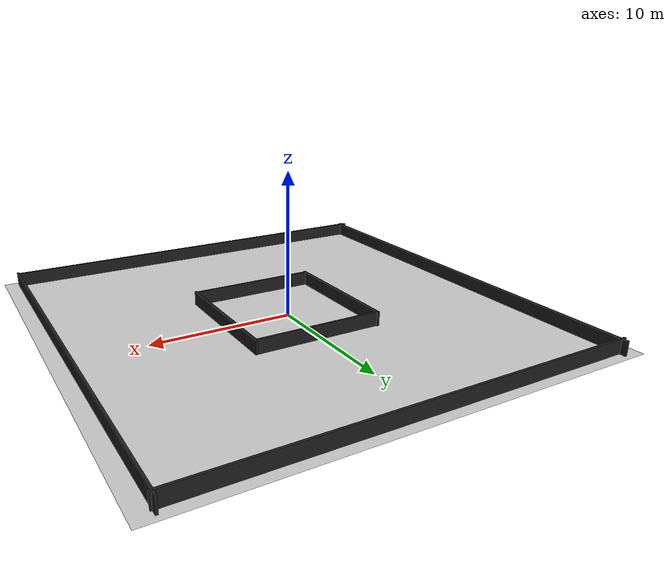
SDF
<sdf version="1.7">
 <world name="default">
  <light name="sun" type="directional">
   <pose>0 0 10 0 -0 0</pose>
   <diffuse>0.8 0.8 0.8 1</diffuse>
   <specular>0.2 0.2 0.2 1</specular>
   <attenuation>
    <range>1000</range>
    <constant>0.9</constant>
    <linear>0.01</linear>
    <quadratic>0.001</quadratic>
   </attenuation>
   <direction>-0.5 0.1 -0.9</direction>
   <spot><inner_angle>0</inner_angle><outer_angle>0</outer_angle><falloff>0</falloff></spot>
  </light>
  <gravity>0 0 -9.8</gravity>
  <magnetic_field>6e-06 2.3e-05 -4.2e-05</magnetic_field>
  <atmosphere type="adiabatic"/>
  <physics type="ode">
   <max_step_size>0.001</max_step_size>
   <real_time_factor>1</real_time_factor>
   <real_time_update_rate>1000</real_time_update_rate>
  </physics>
  <scene><ambient>0.4 0.4 0.4 1</ambient><background>0.7 0.7 0.7 1</background><shadows>1</shadows></scene>
  <audio><device>default</device></audio>
  <spherical_coordinates>
   <surface_model>EARTH_WGS84</surface_model>
   <latitude_deg>0</latitude_deg>
   <longitude_deg>0</longitude_deg>
   <elevation>0</elevation>
   <heading_deg>0</heading_deg>
  </spherical_coordinates>
  <model name="my_ground_plane">
   <static>1</static>
   <link name="link">
    <collision name="collision">
     <geometry><plane><normal>0 0 1</normal><size>32 32</size></plane></geometry>
     <surface><friction><ode><mu>100</mu><mu2>50</mu2></ode></friction></surface>
    </collision>
    <visual name="visual">
     <cast_shadows>0</cast_shadows>
     <geometry><plane><normal>0 0 1</normal><size>32 32</size></plane></geometry>
     <material>
      <script>
       <uri>model://wro_ground/materials/scripts</uri>
       <uri>model://wro_ground/materials/textures/</uri>
       <name>WroGround/Image</name>
      </script>
     </material>
    </visual>
   </link>
   <pose>0.085214 -0.149172 0 0 -0 0</pose>
  </model>
  <model name="wall1">
   <pose>0.089831 7.58521 0 0 -0 0</pose>
   <link name="Wall_18">
    <collision name="Wall_18_Collision">
     <geometry><box><size>30 0.15 1</size></box></geometry>
     <pose>0 0 0.5 0 -0 0</pose>
    </collision>
    <visual name="Wall_18_Visual">
     <pose>0 0 0.5 0 -0 0</pose>
     <geometry><box><size>30 0.15 1</size></box></geometry>
     <material>
      <script><uri>file://media/materials/scripts/gazebo.material</uri><name>Gazebo/Black</name></script>
      <ambient>0.3 0.3 0.3 0.3</ambient>
     </material>
     <meta><layer>0</layer></meta>
    </visual>
    <pose>-0 7.51019 0 0 -0 0</pose>
   </link>
   <static>1</static>
  </model>
  <model name="wall2">
   <model name="wall1">
    <pose>0 -4.6e-05 0 0 -0 0</pose>
    <link name="Wall_18">
     <collision name="Wall_18_Collision">
      <geometry><box><size>30 0.15 1</size></box></geometry>
      <pose>0 0 0.5 0 -0 0</pose>
     </collision>
     <visual name="Wall_18_Visual">
      <pose>0 0 0.5 0 -0 0</pose>
      <geometry><box><size>30 0.15 1</size></box></geometry>
      <material>
       <script><uri>file://media/materials/scripts/gazebo.material</uri><name>Gazebo/Black</name></script>
       <ambient>0.3 0.3 0.3 0.3</ambient>
      </material>
      <meta><layer>0</layer></meta>
     </visual>
     <pose>-0 7.51019 0 0 -0 0</pose>
    </link>
    <static>1</static>
   </model>
   <static>0</static>
   <pose>0.035119 -22.7218 0 0 -0 0</pose>
  </model>
  <model name="other_walls">
   <model name="wall1">
    <pose>-14.773 0.011278 0 0 -0 1.57355</pose>
    <link name="Wall_18">
     <collision name="Wall_18_Collision">
      <geometry><box><size>31 0.15 1</size></box></geometry>
      <pose>0 0 0.5 0 -0 0</pose>
     </collision>
     <visual name="Wall_18_Visual">
      <pose>0 0 0.5 0 -0 0</pose>
      <geometry><box><size>31 0.15 1</size></box></geometry>
      <material>
       <script><uri>file://media/materials/scripts/gazebo.material</uri><name>Gazebo/Black</name></script>
       <ambient>0.3 0.3 0.3 0.3</ambient>
      </material>
      <meta><layer>0</layer></meta>
     </visual>
     <pose>-0 7.51019 0 0 -0 0</pose>
    </link>
    <static>1</static>
   </model>
   <model name="wall1_0">
    <pose>14.7731 -0.011278 0 0 -0 1.57587</pose>
    <link name="Wall_18">
     <collision name="Wall_18_Collision">
      <geometry><box><size>31 0.15 1</size></box></geometry>
      <pose>0 0 0.5 0 -0 0</pose>
     </collision>
     <visual name="Wall_18_Visual">
      <pose>0 0 0.5 0 -0 0</pose>
      <geometry><box><size>31 0.15 1</size></box></geometry>
      <material>
       <script><uri>file://media/materials/scripts/gazebo.material</uri><name>Gazebo/Black</name></script>
       <ambient>0.3 0.3 0.3 0.3</ambient>
      </material>
      <meta><layer>0</layer></meta>
     </visual>
     <pose>-0 7.51019 0 0 -0 0</pose>
    </link>
    <static>1</static>
   </model>
   <static>0</static>
   <pose>7.74046 0.07021 0 0 -0 0</pose>
  </model>
  <model name="wall1_1">
   <pose>0.171655 -3.13598 0 0 -0 0</pose>
   <link name="Wall_18">
    <collision name="Wall_18_Collision">
     <geometry><box><size>9 0.15 1</size></box></geometry>
     <pose>0 0 0.5 0 -0 0</pose>
    </collision>
    <visual name="Wall_18_Visual">
     <pose>0 0 0.5 0 -0 0</pose>
     <geometry><box><size>9 0.15 1</size></box></geometry>
     <material>
      <script><uri>file://media/materials/scripts/gazebo.material</uri><name>Gazebo/Black</name></script>
      <ambient>0.3 0.3 0.3 0.3</ambient>
     </material>
     <meta><layer>0</layer></meta>
    </visual>
    <pose>-0 7.51019 0 0 -0 0</pose>
   </link>
   <static>1</static>
  </model>
  <model name="wall1_1_clone">
   <pose>0.169493 -12.3294 0 0 -0 0</pose>
   <link name="Wall_18">
    <collision name="Wall_18_Collision">
     <geometry><box><size>9 0.15 1</size></box></geometry>
     <pose>0 0 0.5 0 -0 0</pose>
    </collision>
    <visual name="Wall_18_Visual">
     <pose>0 0 0.5 0 -0 0</pose>
     <geometry><box><size>9 0.15 1</size></box></geometry>
     <material>
      <script><uri>file://media/materials/scripts/gazebo.material</uri><name>Gazebo/Black</name></script>
      <ambient>0.3 0.3 0.3 0.3</ambient>
     </material>
     <meta><layer>0</layer></meta>
    </visual>
    <pose>-0 7.51019 0 0 -0 0</pose>
   </link>
   <static>1</static>
  </model>
  <model name="wall1_1_clone_0">
   <pose>3.19863 -0.211114 0 0 -0 1.5733</pose>
   <link name="Wall_18">
    <collision name="Wall_18_Collision">
     <geometry><box><size>9.5 0.15 1</size></box></geometry>
     <pose>0 0 0.5 0 -0 0</pose>
    </collision>
    <visual name="Wall_18_Visual">
     <pose>0 0 0.5 0 -0 0</pose>
     <geometry><box><size>9.5 0.15 1</size></box></geometry>
     <material>
      <script><uri>file://media/materials/scripts/gazebo.material</uri><name>Gazebo/Black</name></script>
      <ambient>0.3 0.3 0.3 0.3</ambient>
     </material>
     <meta><layer>0</layer></meta>
    </visual>
    <pose>-0 7.51019 0 0 -0 0</pose>
   </link>
   <static>1</static>
  </model>
  <model name="wall1_1_clone_0_clone">
   <pose>12.2257 -0.25175 0 0 -0 1.5733</pose>
   <link name="Wall_18">
    <collision name="Wall_18_Collision">
     <geometry><box><size>9.5 0.15 1</size></box></geometry>
     <pose>0 0 0.5 0 -0 0</pose>
    </collision>
    <visual name="Wall_18_Visual">
     <pose>0 0 0.5 0 -0 0</pose>
     <geometry><box><size>9.5 0.15 1</size></box></geometry>
     <material>
      <script><uri>file://media/materials/scripts/gazebo.material</uri><name>Gazebo/Black</name></script>
      <ambient>0.3 0.3 0.3 0.3</ambient>
     </material>
     <meta><layer>0</layer></meta>
    </visual>
    <pose>-0 7.51019 0 0 -0 0</pose>
   </link>
   <static>1</static>
  </model>
 </world>
</sdf>
